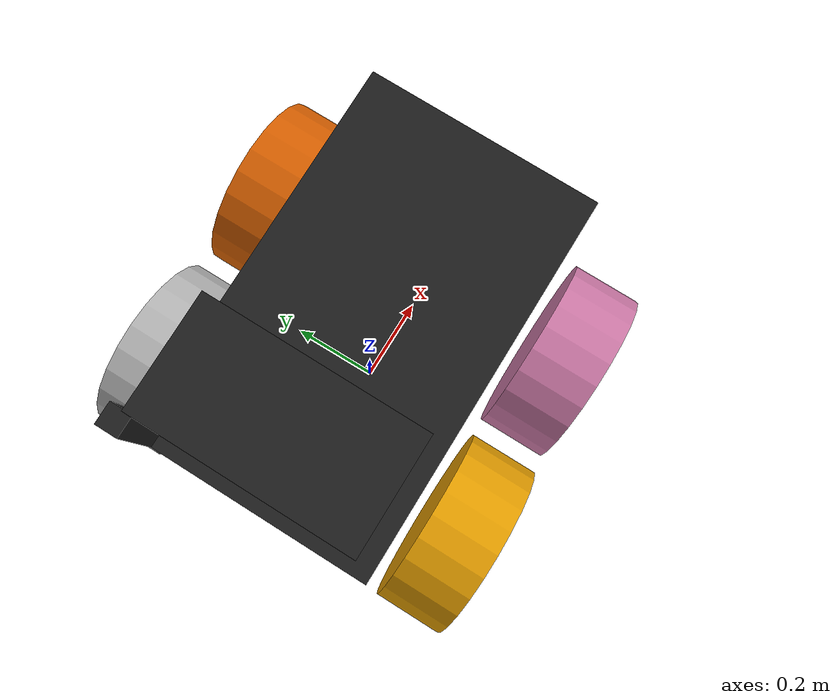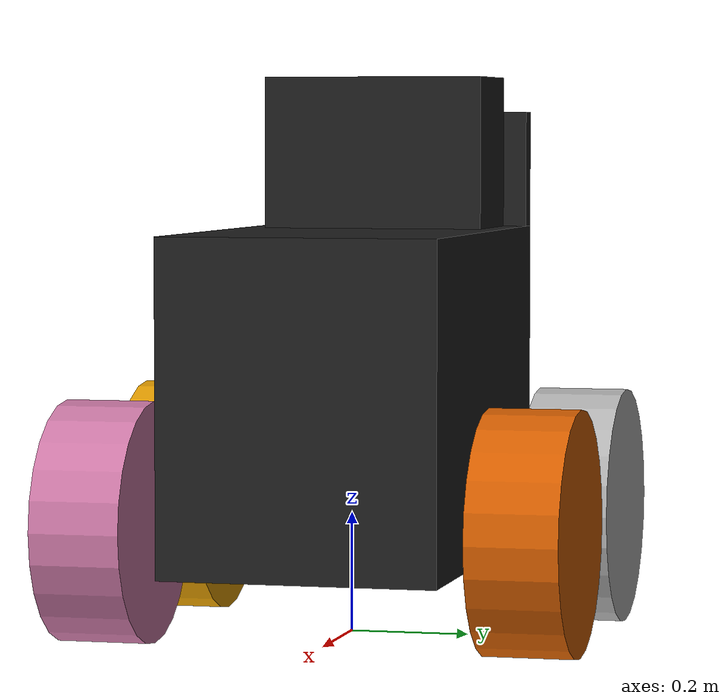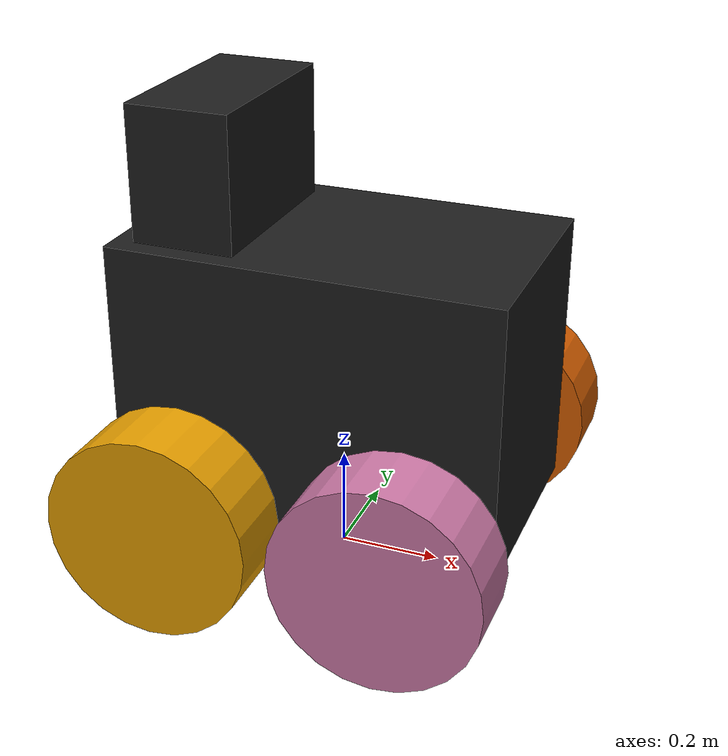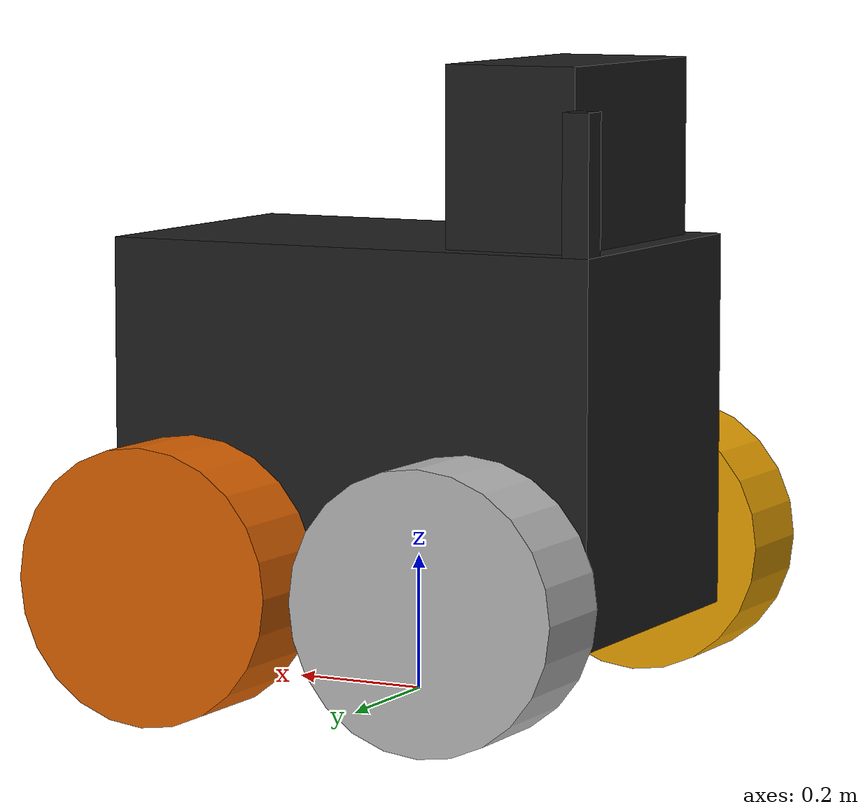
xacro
<?xml version="1.0"?>

<robot name="inspector_bot" xmlns:xacro="http://ros.org/wiki/xacro">

  <!-- Materials -->
  <xacro:include filename="$(find cb_description)/urdf/common_properties.xacro" />

  <!-- Base Size -->
  <xacro:property name="base_x_size" value="0.76" />
  <xacro:property name="base_y_size" value="0.46" />
  <xacro:property name="base_z_size" value="0.55" />

  <!-- Profile Size -->
  <xacro:property name="profile_size" value="0.04" />
  <xacro:property name="profile_left_height" value="0.2"/> <!-- camera -->
  <xacro:property name="profile_right_height" value="0.7"/> <!-- camera -->

  <!-- Origin -->
  <xacro:property name="origin_x" value="0.025" />
  <xacro:property name="origin_y" value="0.025" />

  <!-- Wheel Mounting Positions -->
  <xacro:property name="wheelbase" value="0.44" />
  <xacro:property name="track" value="0.71" />
  <xacro:property name="wheel_vertical_offset" value="0.2" />

  <!-- Wheel Properties -->
  <xacro:property name="wheel_length" value="0.15" />
  <xacro:property name="wheel_radius" value="0.2" />
  <xacro:property name="base_center_height" value="${wheel_vertical_offset + wheel_radius}" />

  <!-- Battery Size -->
  <xacro:property name="battery_x_size" value="${0.18+0.02}"/>
  <xacro:property name="battery_y_size" value="${0.36+0.02}"/>
  <xacro:property name="battery_z_size" value="${0.28-0.02}"/>

  <xacro:property name="M_PI" value="3.14159"/>

  <!-- Inspector_bot wheel macro -->
  <xacro:macro name="inspector_bot_wheel" params="wheel_prefix *joint_pose">

    <link name="${wheel_prefix}_wheel_link">
      <inertial>
        <mass value="2.637" />
        <origin xyz="0 0 0" />
        <inertia  ixx="0.02467" ixy="0" ixz="0" iyy="0.04411" iyz="0" izz="0.02467" />
      </inertial>
      <visual>
        <origin xyz="0 0 0" rpy="${M_PI/2} 0 0" />
          <geometry>
            <cylinder length="${wheel_length}" radius="${wheel_radius}"/>
          </geometry>
      </visual>
      <collision>
        <origin xyz="0 0 0" rpy="${M_PI/2} 0 0" />
          <geometry>
            <cylinder length="${wheel_length}" radius="${wheel_radius}"/>
          </geometry>
      </collision>
    </link>

    <joint name="${wheel_prefix}_wheel" type="fixed">
      <xacro:insert_block name="joint_pose"/>
      <parent link="bare_base_link"/>
      <child link="${wheel_prefix}_wheel_link"/>
      <axis xyz="0 1 0" rpy="0 0 0" />
    </joint>
  </xacro:macro>

  <!-- inspector_bot base -->
  <link name="base_footprint"/>

  <joint name="base_joint" type="fixed">
    <origin xyz="0 0 0" rpy="0 0 0" />
    <parent link="base_footprint" />
    <child link="bare_base_link" />
  </joint>

  <link name="bare_base_link">
    <visual>
      <origin xyz="0 0 ${base_center_height}" rpy="0 0 0" />
      <geometry>
        <box size = "${base_x_size}  ${base_y_size}  ${base_z_size}"/>
      </geometry>
      <material name="black"/>
    </visual>
    <collision>
      <origin xyz="0 0 ${base_center_height}" rpy="0 0 0" />
      <geometry>
        <box size = "${base_x_size}  ${base_y_size}  ${base_z_size}"/>
      </geometry>
    </collision>
  </link>

  <!-- interial link stores the robot's inertial information -->
  <link name="inertial_link">
    <inertial>
      <mass value="50"/>
      <origin xyz="0 0 ${base_center_height}"/>
      <inertia ixx="2.14" ixy="0.0" ixz="0.0" iyy="3.67" iyz="0.0" izz="3.29"/>
    </inertial>
  </link>

  <joint name="inertial_joint" type="fixed">
    <origin xyz="0 0 0" rpy="0 0 0" />
    <parent link="bare_base_link" />
    <child link="inertial_link" />
  </joint>

  <!-- interial link stores the robot's inertial information -->
  <link name="base_imu_link"/>

  <joint name="imu_joint" type="fixed">
    <origin xyz="0 0 0" rpy="${M_PI} 0 0" />
    <parent link="bare_base_link" />
    <child link="base_imu_link" />
  </joint>

  <!-- laser link -->
  <link name="base_laser_link"/>

  <joint name="laser_joint" type="fixed">
    <origin xyz="${base_x_size/2+0.1} 0 ${wheel_radius*2}" rpy="0 0 0" />
    <parent link="bare_base_link" />
    <child link="base_laser_link" />
  </joint>

  <!-- inspector_bot wheels -->
  <xacro:inspector_bot_wheel wheel_prefix="front_left">
    <origin xyz="${wheelbase/2} ${track/2} ${wheel_vertical_offset}" rpy="0 0 0" />
  </xacro:inspector_bot_wheel>
  <xacro:inspector_bot_wheel wheel_prefix="front_right">
    <origin xyz="${wheelbase/2} ${-track/2} ${wheel_vertical_offset}" rpy="0 0 0" />
  </xacro:inspector_bot_wheel>
  <xacro:inspector_bot_wheel wheel_prefix="rear_left">
    <origin xyz="${-wheelbase/2} ${track/2} ${wheel_vertical_offset}" rpy="0 0 0" />
  </xacro:inspector_bot_wheel>
  <xacro:inspector_bot_wheel wheel_prefix="rear_right">
    <origin xyz="${-wheelbase/2} ${-track/2} ${wheel_vertical_offset}" rpy="0 0 0" />
  </xacro:inspector_bot_wheel>

  <!-- profile for side facing camera : left, right-->
  <joint name="camera_profile_left_fixed_joint" type="fixed">
    <parent link="bare_base_link"/>
    <child link="camera_profile_left"/>
    <origin xyz="${-base_x_size/2 + profile_size/2} ${base_y_size/2 - profile_size/2} ${base_center_height + base_z_size/2 + profile_left_height/2}" rpy="0 0 0"/>
  </joint>

  <link name="camera_profile_left">
    <visual>
      <geometry>
        <box size="${profile_size} ${profile_size} ${profile_left_height}"/>
      </geometry>
      <material name="black"/>
    </visual>

    <collision>
      <geometry>
        <box size="${profile_size} ${profile_size} ${profile_left_height}"/>
      </geometry>
      <material name="black"/>
    </collision>
  </link>

  <!-- battery -->
  <joint name="battery_fixed_joint" type="fixed">
    <parent link="bare_base_link"/>
    <child link="battery_link"/>
    <origin xyz="${-base_x_size/2 + profile_size + battery_x_size/2} 0 ${base_center_height + base_z_size/2 + battery_z_size/2}" rpy="0 0 0"/>
  </joint>

  <link name="battery_link">
    <visual>
      <geometry>
        <box size="${battery_x_size} ${battery_y_size} ${battery_z_size}"/>
      </geometry>
      <material name="black"/>
    </visual>

    <collision>
      <geometry>
        <box size="${battery_x_size} ${battery_y_size} ${battery_z_size}"/>
      </geometry>
      <material name="black"/>
    </collision>
  </link>

</robot>
